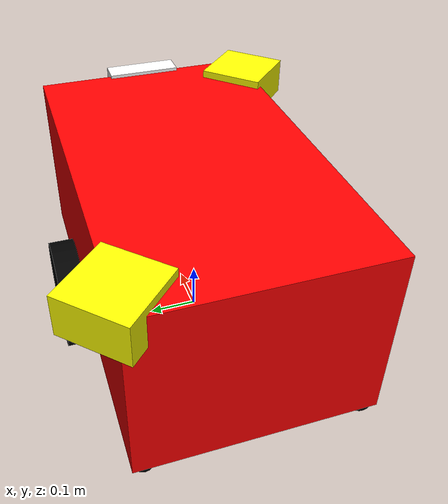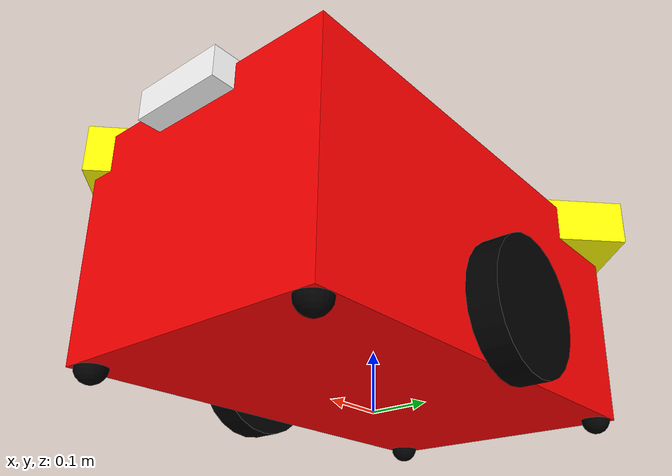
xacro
<?xml version="1.0"?>
<robot name="TY2_SW" xmlns:xacro="http://ros.org/wiki/xacro">

	<xacro:include filename="common_properties.xacro"/>
	<!--xacro:include filename="TY2_SW.gazebo.xacro"/-->

	<link name="base_footprint"/>

	<link name="base_link"/>

	<link name="body_link">
		<visual>
			<geometry>
				<box size="0.8 0.48 0.37" />
			</geometry>
			<origin xyz="0 0 0.1" rpy="0 0 0" />
			<material name="red" />
		</visual>
		<collision>
			<origin xyz="0 0 0.1" rpy="0 0 0" />
			<geometry>
				<box size="0.8 0.48 0.37" />
			</geometry>
		</collision>
		<inertial>
			<origin xyz="0 0 0" rpy="0 0 0"/>
			<mass value="8.2573504e-01"/>
			<inertia ixx="2.2124416e-03" ixy="-1.2294101e-05" ixz="3.4938785e-05"
					 iyy="2.1193702e-03" iyz="-5.0120904e-06"
					 izz="2.0064271e-03" />
		</inertial>
	</link>

	<link name="Lwheel_link">
		<visual>
			<geometry>
				<cylinder length="0.05" radius="0.11" />
			</geometry>
			<material name="black" />
		</visual>
		<collision>
			<origin xyz="0 0 0" rpy="0 0 0"/>
			<geometry>
				<cylinder length="0.05" radius="0.11" />
			</geometry>
		</collision>
		<inertial>
			<origin xyz="0 0 0" />
			<mass value="2.8498940e-02" />
			<inertia ixx="1.1175580e-05" ixy="-4.2369783e-11" ixz="-5.9381719e-09"
					 iyy="1.1192413e-05" iyz="-1.4400107e-11"
					 izz="2.0712558e-05" />
		</inertial>
	</link>
	<link name="Rwheel_link">
		<visual>
			<geometry>
				<cylinder length="0.05" radius="0.11" />
			</geometry>
			<material name="black" />
		</visual>
		<collision>
			<origin xyz="0 0 0" rpy="0 0 0"/>
			<geometry>
				<cylinder length="0.05" radius="0.11" />
			</geometry>
		</collision>
		<inertial>
			<origin xyz="0 0 0" />
			<mass value="2.8498940e-02" />
			<inertia ixx="1.1175580e-05" ixy="-4.2369783e-11" ixz="-5.9381719e-09"
					 iyy="1.1192413e-05" iyz="-1.4400107e-11"
					 izz="2.0712558e-05" />
		</inertial>
	</link>
	<link name="scanF_link">
		<visual>
			<geometry>
				<box size="0.14 0.14 0.08" />
			</geometry>
			<origin xyz="0 0 0.03" rpy="0 0 0" />
			<material name="yallow" />
		</visual>
		<collision>
			<origin xyz="0 0 0.03" rpy="0 0 0" />
			<geometry>
				<box size="0.14 0.14 0.08" />
			</geometry>
		</collision>
		<inertial>
			<mass value="0.114" />
			<origin xyz="0 0 0" />
			<inertia ixx="0.001" ixy="0.0" ixz="0.0"
					 iyy="0.001" iyz="0.0"
					 izz="0.001" />
		</inertial>
	</link>
	<link name="scanB_link">
		<visual>
			<geometry>
				<box size="0.14 0.14 0.08" />
			</geometry>
			<origin xyz="0 0 0.03" rpy="0 0 0" />
			<material name="yallow" />
		</visual>
		<collision>
			<origin xyz="0 0 0.03" rpy="0 0 0" />
			<geometry>
				<box size="0.14 0.14 0.08" />
			</geometry>
		</collision>
		<inertial>
			<mass value="0.114" />
			<origin xyz="0 0 0" />
			<inertia ixx="0.001" ixy="0.0" ixz="0.0"
					 iyy="0.001" iyz="0.0"
					 izz="0.001" />
		</inertial>
	</link>
	<link name="realsensor_link">
		<visual>
			<geometry>
				<box size="0.05 0.16 0.05" />
			</geometry>
			<material name="white" />
		</visual>
		<collision>
			<origin xyz="0 0 0" rpy="0 0 0" />
			<geometry>
				<box size="0.05 0.16 0.05" />
			</geometry>
		</collision>
		<inertial>
			<mass value="0.114" />
			<origin xyz="0 0 0" />
			<inertia ixx="0.001" ixy="0.0" ixz="0.0"
					 iyy="0.001" iyz="0.0"
					 izz="0.001" />
		</inertial>
	</link>
	<link name="imu_ch110_link">
		<visual>
			<geometry>
				<box size="0.04 0.04 0.025" />
			</geometry>
			<material name="black" />
		</visual>
		<collision>
			<origin xyz="0 0 0" rpy="0 0 0" />
			<geometry>
				<box size="0.04 0.04 0.025" />
			</geometry>
		</collision>
		<inertial>
			<mass value="0.114" />
			<origin xyz="0 0 0" />
			<inertia ixx="0.001" ixy="0.0" ixz="0.0"
					 iyy="0.001" iyz="0.0"
					 izz="0.001" />
		</inertial>
	</link>

	<link name="sub_wheel1_link">
		<visual>
			<geometry>
				<sphere radius="0.025" />
			</geometry>
			<material name="black" />
		</visual>
		<collision>
			<geometry>
				<sphere radius="0.025" />
			</geometry>
		</collision>
		<inertial>
			<mass value="0.01"/>
			<inertia ixx="0.001" ixy="0.0" ixz="0.0"
					 iyy="0.001" iyz="0.0"
					 izz="0.001" />
		</inertial>
	</link>
	<link name="sub_wheel2_link">
		<visual>
			<geometry>
				<sphere radius="0.025" />
			</geometry>
			<material name="black" />
		</visual>
		<collision>
			<geometry>
				<sphere radius="0.025" />
			</geometry>
		</collision>
		<inertial>
			<mass value="0.01"/>
			<inertia ixx="0.001" ixy="0.0" ixz="0.0"
					 iyy="0.001" iyz="0.0"
					 izz="0.001" />
		</inertial>
	</link>
	<link name="sub_wheel3_link">
		<visual>
			<geometry>
				<sphere radius="0.025" />
			</geometry>
			<material name="black" />
		</visual>
		<collision>
			<geometry>
				<sphere radius="0.025" />
			</geometry>
		</collision>
		<inertial>
			<mass value="0.01"/>
			<inertia ixx="0.001" ixy="0.0" ixz="0.0"
					 iyy="0.001" iyz="0.0"
					 izz="0.001" />
		</inertial>
	</link>
	<link name="sub_wheel4_link">
		<visual>
			<geometry>
				<sphere radius="0.025" />
			</geometry>
			<material name="black" />
		</visual>
		<collision>
			<geometry>
				<sphere radius="0.025" />
			</geometry>
		</collision>
		<inertial>
			<mass value="0.01"/>
			<inertia ixx="0.001" ixy="0.0" ixz="0.0"
					 iyy="0.001" iyz="0.0"
					 izz="0.001" />
		</inertial>
	</link>

	<joint name="basefootprint_to_base_joint" type="fixed">
		<origin xyz="0 0 0.11" rpy="0 0 0" />
		<parent link="base_footprint" />
		<child link="base_link" />
	</joint>
	<joint name="base_to_body_joint" type="fixed">
		<origin xyz="0 0 0" rpy="0 0 0" />
		<parent link="base_link" />
		<child link="body_link" />
	</joint>
	<joint name="body_to_Lwheel_joint" type="fixed">
		<origin xyz="0 0.2738 0" rpy="-1.5707 0 0" />
		<parent link="body_link" />
		<child link="Lwheel_link" />
		<axis xyz="0 1 0" />
	</joint>
	<joint name="body_to_Rwheel_joint" type="fixed">
		<origin xyz="0 -0.2738 0" rpy="1.5707 0 0" />
		<parent link="body_link" />
		<child link="Rwheel_link" />
		<axis xyz="0 1 0" />
	</joint>
	<joint name="body_to_scanF_joint" type="fixed">>
		<origin xyz="0.33142 -0.22887 0.23138" rpy="0 0 -0.7853981634" />
		<parent link="body_link" />
		<child link="scanF_link" />
	</joint>
	<joint name="body_to_scanB_joint" type="fixed">>
		<origin xyz="-0.33142 0.22887 0.23138" rpy="0 0 2.3561944902" />
		<parent link="body_link" />
		<child link="scanB_link" />
	</joint>
	<joint name="body_to_realsensor_joint" type="fixed">>
		<origin xyz="0.4129 0 0.2675" rpy="0 0 0" />
		<parent link="body_link" />
		<child link="realsensor_link" />
	</joint>
	<joint name="body_to_imu_joint" type="fixed">>
		<origin xyz="0 0 -0.0246" rpy="0 0 0" />
		<parent link="body_link" />
		<child link="imu_ch110_link" />
	</joint>

	<joint name="body_to_Swheel1_joint" type="fixed">>
		<origin xyz="0.375 0.215 -0.085" rpy="0 0 0" />
		<parent link="body_link" />
		<child link="sub_wheel1_link" />
	</joint>
	<joint name="body_to_Swheel2_joint" type="fixed">>
		<origin xyz="0.375 -0.215 -0.085" rpy="0 0 0" />
		<parent link="body_link" />
		<child link="sub_wheel2_link" />
	</joint>
	<joint name="body_to_Swheel3_joint" type="fixed">>
		<origin xyz="-0.375 -0.215 -0.085" rpy="0 0 0" />
		<parent link="body_link" />
		<child link="sub_wheel3_link" />
	</joint>
	<joint name="body_to_Swheel4_joint" type="fixed">>
		<origin xyz="-0.375 0.215 -0.085" rpy="0 0 0" />
		<parent link="body_link" />
		<child link="sub_wheel4_link" />
	</joint>

</robot>

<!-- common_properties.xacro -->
<robot name="xacro_properties" xmlns:xacro="http://ros.org/wiki/xacro">

  <!-- Init colour -->
  <material name="black">
      <color rgba="0.0 0.0 0.0 1.0"/>
  </material>

  <material name="blue">
    <color rgba="0.0 0.0 1.0 1.0"/>
  </material>

  <material name="green">
    <color rgba="0.0 1.0 0.0 1.0"/>
  </material>

  <material name="grey">
    <color rgba="0.5 0.5 0.5 1.0"/>
  </material>

  <material name="yallow">
		<color rgba="1.0 1.0 0.0 1.0"/>
	</material>

  <material name="orange">
    <color rgba="${255/255} ${108/255} ${10/255} 1.0"/>
  </material>

  <material name="brown">
    <color rgba="${222/255} ${207/255} ${195/255} 1.0"/>
  </material>

  <material name="red">
    <color rgba="1.0 0.0 0.0 1.0"/>
  </material>

  <material name="white">
    <color rgba="1.0 1.0 1.0 1.0"/>
  </material>
</robot>
